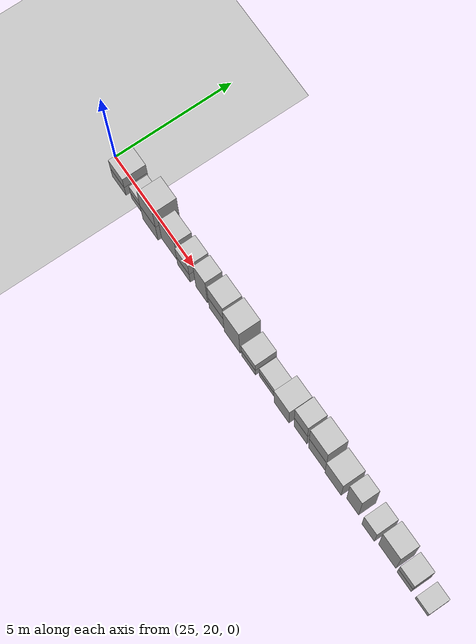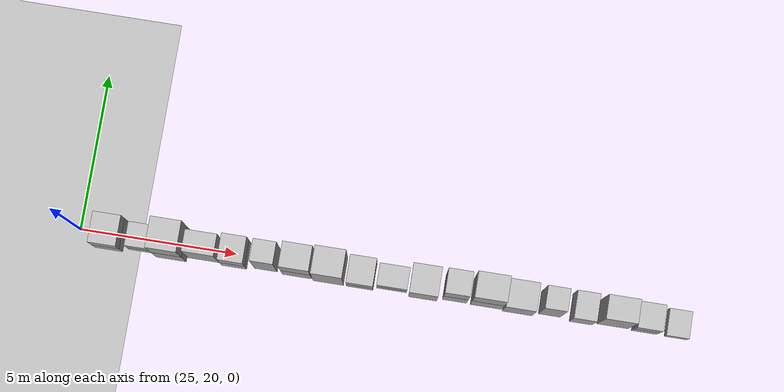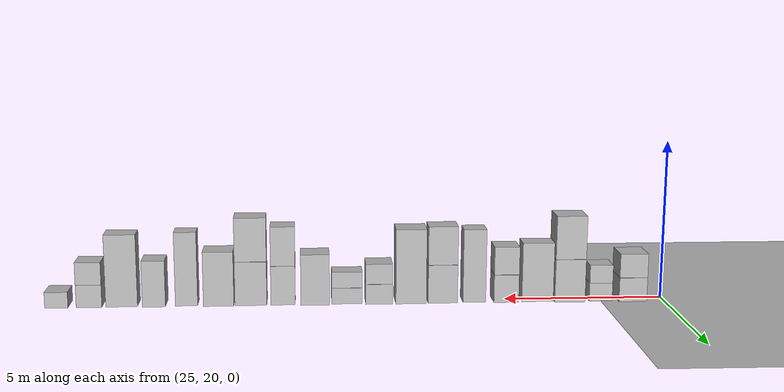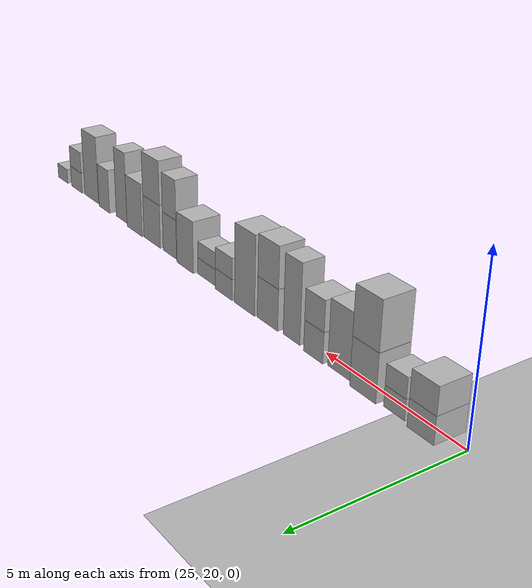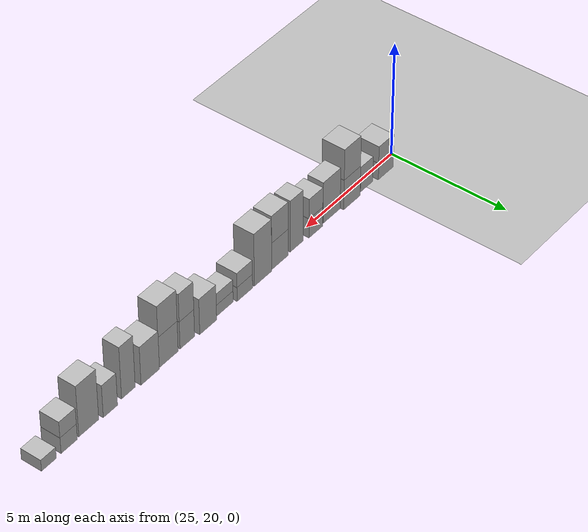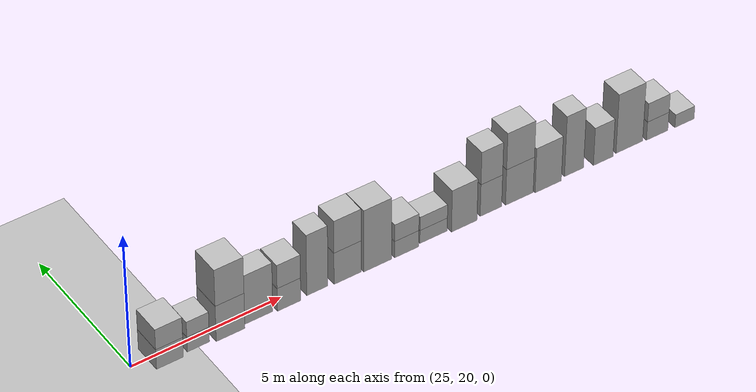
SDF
<sdf version="1.5">
 <world name="default">
  <model name="ground_plane">
   <static>true</static>
   <link name="link">
    <collision name="collision">
     <geometry><plane><normal>0 0 1</normal><size>250 250</size></plane></geometry>
     <surface><friction><ode><mu>1</mu><mu2>1</mu2></ode></friction></surface>
    </collision>
    <visual name="grass">
     <cast_shadows>false</cast_shadows>
     <geometry><mesh><uri>file://grass_plane/meshes/grass_plane.dae</uri></mesh></geometry>
    </visual>
   </link>
  </model>
  <model name="Cardboard_box_351">
   <link name="link_0">
    <pose>26 20 0 0 0 0</pose>
    <inertial>
     <mass>1</mass>
     <inertia>
      <ixx>0.166667</ixx>
      <ixy>0</ixy>
      <ixz>0</ixz>
      <iyy>0.166667</iyy>
      <iyz>0</iyz>
      <izz>0.166667</izz>
     </inertia>
    </inertial>
    <collision name="collision">
     <geometry>
      <mesh>
       <uri>model://Cardboard_box/meshes/cardboard_box.dae</uri>
       <scale>2.21627077504 2.44480705273 1.92564621155</scale>
      </mesh>
     </geometry>
    </collision>
    <visual name="visual">
     <geometry>
      <mesh>
       <uri>model://Cardboard_box/meshes/cardboard_box.dae</uri>
       <scale>2.21627077504 2.44480705273 1.92564621155</scale>
      </mesh>
     </geometry>
    </visual>
   </link>
   <static>1</static>
  </model>
  <model name="Cardboard_box_top_351">
   <link name="link_0">
    <pose>26 20 0.770258484618 0 0 0</pose>
    <inertial>
     <mass>1</mass>
     <inertia>
      <ixx>0.166667</ixx>
      <ixy>0</ixy>
      <ixz>0</ixz>
      <iyy>0.166667</iyy>
      <iyz>0</iyz>
      <izz>0.166667</izz>
     </inertia>
    </inertial>
    <collision name="collision">
     <geometry>
      <mesh>
       <uri>model://Cardboard_box/meshes/cardboard_box.dae</uri>
       <scale>2.21627077504 2.44480705273 1.92564621155</scale>
      </mesh>
     </geometry>
    </collision>
    <visual name="visual">
     <geometry>
      <mesh>
       <uri>model://Cardboard_box/meshes/cardboard_box.dae</uri>
       <scale>2.21627077504 2.44480705273 1.92564621155</scale>
      </mesh>
     </geometry>
    </visual>
   </link>
   <static>1</static>
  </model>
  <model name="Cardboard_box_352">
   <link name="link_0">
    <pose>27 20 0 0 0 0</pose>
    <inertial>
     <mass>1</mass>
     <inertia>
      <ixx>0.166667</ixx>
      <ixy>0</ixy>
      <ixz>0</ixz>
      <iyy>0.166667</iyy>
      <iyz>0</iyz>
      <izz>0.166667</izz>
     </inertia>
    </inertial>
    <collision name="collision">
     <geometry>
      <mesh>
       <uri>model://Cardboard_box/meshes/cardboard_box.dae</uri>
       <scale>1.83399176675 1.92023789862 1.45367494114</scale>
      </mesh>
     </geometry>
    </collision>
    <visual name="visual">
     <geometry>
      <mesh>
       <uri>model://Cardboard_box/meshes/cardboard_box.dae</uri>
       <scale>1.83399176675 1.92023789862 1.45367494114</scale>
      </mesh>
     </geometry>
    </visual>
   </link>
   <static>1</static>
  </model>
  <model name="Cardboard_box_top_352">
   <link name="link_0">
    <pose>27 20 0.581469976457 0 0 0</pose>
    <inertial>
     <mass>1</mass>
     <inertia>
      <ixx>0.166667</ixx>
      <ixy>0</ixy>
      <ixz>0</ixz>
      <iyy>0.166667</iyy>
      <iyz>0</iyz>
      <izz>0.166667</izz>
     </inertia>
    </inertial>
    <collision name="collision">
     <geometry>
      <mesh>
       <uri>model://Cardboard_box/meshes/cardboard_box.dae</uri>
       <scale>1.83399176675 1.92023789862 1.45367494114</scale>
      </mesh>
     </geometry>
    </collision>
    <visual name="visual">
     <geometry>
      <mesh>
       <uri>model://Cardboard_box/meshes/cardboard_box.dae</uri>
       <scale>1.83399176675 1.92023789862 1.45367494114</scale>
      </mesh>
     </geometry>
    </visual>
   </link>
   <static>1</static>
  </model>
  <model name="Cardboard_box_353">
   <link name="link_0">
    <pose>28 20 0 0 0 0</pose>
    <inertial>
     <mass>1</mass>
     <inertia>
      <ixx>0.166667</ixx>
      <ixy>0</ixy>
      <ixz>0</ixz>
      <iyy>0.166667</iyy>
      <iyz>0</iyz>
      <izz>0.166667</izz>
     </inertia>
    </inertial>
    <collision name="collision">
     <geometry>
      <mesh>
       <uri>model://Cardboard_box/meshes/cardboard_box.dae</uri>
       <scale>2.40103749172 2.43534651903 3.45936105191</scale>
      </mesh>
     </geometry>
    </collision>
    <visual name="visual">
     <geometry>
      <mesh>
       <uri>model://Cardboard_box/meshes/cardboard_box.dae</uri>
       <scale>2.40103749172 2.43534651903 3.45936105191</scale>
      </mesh>
     </geometry>
    </visual>
   </link>
   <static>1</static>
  </model>
  <model name="Cardboard_box_top_353">
   <link name="link_0">
    <pose>28 20 1.38374442076 0 0 0</pose>
    <inertial>
     <mass>1</mass>
     <inertia>
      <ixx>0.166667</ixx>
      <ixy>0</ixy>
      <ixz>0</ixz>
      <iyy>0.166667</iyy>
      <iyz>0</iyz>
      <izz>0.166667</izz>
     </inertia>
    </inertial>
    <collision name="collision">
     <geometry>
      <mesh>
       <uri>model://Cardboard_box/meshes/cardboard_box.dae</uri>
       <scale>2.40103749172 2.43534651903 3.45936105191</scale>
      </mesh>
     </geometry>
    </collision>
    <visual name="visual">
     <geometry>
      <mesh>
       <uri>model://Cardboard_box/meshes/cardboard_box.dae</uri>
       <scale>2.40103749172 2.43534651903 3.45936105191</scale>
      </mesh>
     </geometry>
    </visual>
   </link>
   <static>1</static>
  </model>
  <model name="Cardboard_box_354">
   <link name="link_0">
    <pose>29 20 0 0 0 0</pose>
    <inertial>
     <mass>1</mass>
     <inertia>
      <ixx>0.166667</ixx>
      <ixy>0</ixy>
      <ixz>0</ixz>
      <iyy>0.166667</iyy>
      <iyz>0</iyz>
      <izz>0.166667</izz>
     </inertia>
    </inertial>
    <collision name="collision">
     <geometry>
      <mesh>
       <uri>model://Cardboard_box/meshes/cardboard_box.dae</uri>
       <scale>2.49883755894 1.74340582279 4.7411884213</scale>
      </mesh>
     </geometry>
    </collision>
    <visual name="visual">
     <geometry>
      <mesh>
       <uri>model://Cardboard_box/meshes/cardboard_box.dae</uri>
       <scale>2.49883755894 1.74340582279 4.7411884213</scale>
      </mesh>
     </geometry>
    </visual>
   </link>
   <static>1</static>
  </model>
  <model name="Cardboard_box_355">
   <link name="link_0">
    <pose>30 20 0 0 0 0</pose>
    <inertial>
     <mass>1</mass>
     <inertia>
      <ixx>0.166667</ixx>
      <ixy>0</ixy>
      <ixz>0</ixz>
      <iyy>0.166667</iyy>
      <iyz>0</iyz>
      <izz>0.166667</izz>
     </inertia>
    </inertial>
    <collision name="collision">
     <geometry>
      <mesh>
       <uri>model://Cardboard_box/meshes/cardboard_box.dae</uri>
       <scale>1.97534647907 2.10044778413 2.23458932496</scale>
      </mesh>
     </geometry>
    </collision>
    <visual name="visual">
     <geometry>
      <mesh>
       <uri>model://Cardboard_box/meshes/cardboard_box.dae</uri>
       <scale>1.97534647907 2.10044778413 2.23458932496</scale>
      </mesh>
     </geometry>
    </visual>
   </link>
   <static>1</static>
  </model>
  <model name="Cardboard_box_top_355">
   <link name="link_0">
    <pose>30 20 0.893835729983 0 0 0</pose>
    <inertial>
     <mass>1</mass>
     <inertia>
      <ixx>0.166667</ixx>
      <ixy>0</ixy>
      <ixz>0</ixz>
      <iyy>0.166667</iyy>
      <iyz>0</iyz>
      <izz>0.166667</izz>
     </inertia>
    </inertial>
    <collision name="collision">
     <geometry>
      <mesh>
       <uri>model://Cardboard_box/meshes/cardboard_box.dae</uri>
       <scale>1.97534647907 2.10044778413 2.23458932496</scale>
      </mesh>
     </geometry>
    </collision>
    <visual name="visual">
     <geometry>
      <mesh>
       <uri>model://Cardboard_box/meshes/cardboard_box.dae</uri>
       <scale>1.97534647907 2.10044778413 2.23458932496</scale>
      </mesh>
     </geometry>
    </visual>
   </link>
   <static>1</static>
  </model>
  <model name="Cardboard_box_356">
   <link name="link_0">
    <pose>31 20 0 0 0 0</pose>
    <inertial>
     <mass>1</mass>
     <inertia>
      <ixx>0.166667</ixx>
      <ixy>0</ixy>
      <ixz>0</ixz>
      <iyy>0.166667</iyy>
      <iyz>0</iyz>
      <izz>0.166667</izz>
     </inertia>
    </inertial>
    <collision name="collision">
     <geometry>
      <mesh>
       <uri>model://Cardboard_box/meshes/cardboard_box.dae</uri>
       <scale>1.8056659084 1.74681240035 5.88814653012</scale>
      </mesh>
     </geometry>
    </collision>
    <visual name="visual">
     <geometry>
      <mesh>
       <uri>model://Cardboard_box/meshes/cardboard_box.dae</uri>
       <scale>1.8056659084 1.74681240035 5.88814653012</scale>
      </mesh>
     </geometry>
    </visual>
   </link>
   <static>1</static>
  </model>
  <model name="Cardboard_box_357">
   <link name="link_0">
    <pose>32 20 0 0 0 0</pose>
    <inertial>
     <mass>1</mass>
     <inertia>
      <ixx>0.166667</ixx>
      <ixy>0</ixy>
      <ixz>0</ixz>
      <iyy>0.166667</iyy>
      <iyz>0</iyz>
      <izz>0.166667</izz>
     </inertia>
    </inertial>
    <collision name="collision">
     <geometry>
      <mesh>
       <uri>model://Cardboard_box/meshes/cardboard_box.dae</uri>
       <scale>2.32715835396 1.98637832905 3.07040538458</scale>
      </mesh>
     </geometry>
    </collision>
    <visual name="visual">
     <geometry>
      <mesh>
       <uri>model://Cardboard_box/meshes/cardboard_box.dae</uri>
       <scale>2.32715835396 1.98637832905 3.07040538458</scale>
      </mesh>
     </geometry>
    </visual>
   </link>
   <static>1</static>
  </model>
  <model name="Cardboard_box_top_357">
   <link name="link_0">
    <pose>32 20 1.22816215383 0 0 0</pose>
    <inertial>
     <mass>1</mass>
     <inertia>
      <ixx>0.166667</ixx>
      <ixy>0</ixy>
      <ixz>0</ixz>
      <iyy>0.166667</iyy>
      <iyz>0</iyz>
      <izz>0.166667</izz>
     </inertia>
    </inertial>
    <collision name="collision">
     <geometry>
      <mesh>
       <uri>model://Cardboard_box/meshes/cardboard_box.dae</uri>
       <scale>2.32715835396 1.98637832905 3.07040538458</scale>
      </mesh>
     </geometry>
    </collision>
    <visual name="visual">
     <geometry>
      <mesh>
       <uri>model://Cardboard_box/meshes/cardboard_box.dae</uri>
       <scale>2.32715835396 1.98637832905 3.07040538458</scale>
      </mesh>
     </geometry>
    </visual>
   </link>
   <static>1</static>
  </model>
  <model name="Cardboard_box_358">
   <link name="link_0">
    <pose>33 20 0 0 0 0</pose>
    <inertial>
     <mass>1</mass>
     <inertia>
      <ixx>0.166667</ixx>
      <ixy>0</ixy>
      <ixz>0</ixz>
      <iyy>0.166667</iyy>
      <iyz>0</iyz>
      <izz>0.166667</izz>
     </inertia>
    </inertial>
    <collision name="collision">
     <geometry>
      <mesh>
       <uri>model://Cardboard_box/meshes/cardboard_box.dae</uri>
       <scale>2.4139722664 2.21125031068 5.99443428483</scale>
      </mesh>
     </geometry>
    </collision>
    <visual name="visual">
     <geometry>
      <mesh>
       <uri>model://Cardboard_box/meshes/cardboard_box.dae</uri>
       <scale>2.4139722664 2.21125031068 5.99443428483</scale>
      </mesh>
     </geometry>
    </visual>
   </link>
   <static>1</static>
  </model>
  <model name="Cardboard_box_359">
   <link name="link_0">
    <pose>34 20 0 0 0 0</pose>
    <inertial>
     <mass>1</mass>
     <inertia>
      <ixx>0.166667</ixx>
      <ixy>0</ixy>
      <ixz>0</ixz>
      <iyy>0.166667</iyy>
      <iyz>0</iyz>
      <izz>0.166667</izz>
     </inertia>
    </inertial>
    <collision name="collision">
     <geometry>
      <mesh>
       <uri>model://Cardboard_box/meshes/cardboard_box.dae</uri>
       <scale>2.10958934457 2.23888618355 1.61336764243</scale>
      </mesh>
     </geometry>
    </collision>
    <visual name="visual">
     <geometry>
      <mesh>
       <uri>model://Cardboard_box/meshes/cardboard_box.dae</uri>
       <scale>2.10958934457 2.23888618355 1.61336764243</scale>
      </mesh>
     </geometry>
    </visual>
   </link>
   <static>1</static>
  </model>
  <model name="Cardboard_box_top_359">
   <link name="link_0">
    <pose>34 20 0.645347056971 0 0 0</pose>
    <inertial>
     <mass>1</mass>
     <inertia>
      <ixx>0.166667</ixx>
      <ixy>0</ixy>
      <ixz>0</ixz>
      <iyy>0.166667</iyy>
      <iyz>0</iyz>
      <izz>0.166667</izz>
     </inertia>
    </inertial>
    <collision name="collision">
     <geometry>
      <mesh>
       <uri>model://Cardboard_box/meshes/cardboard_box.dae</uri>
       <scale>2.10958934457 2.23888618355 1.61336764243</scale>
      </mesh>
     </geometry>
    </collision>
    <visual name="visual">
     <geometry>
      <mesh>
       <uri>model://Cardboard_box/meshes/cardboard_box.dae</uri>
       <scale>2.10958934457 2.23888618355 1.61336764243</scale>
      </mesh>
     </geometry>
    </visual>
   </link>
   <static>1</static>
  </model>
  <model name="Cardboard_box_360">
   <link name="link_0">
    <pose>35 20 0 0 0 0</pose>
    <inertial>
     <mass>1</mass>
     <inertia>
      <ixx>0.166667</ixx>
      <ixy>0</ixy>
      <ixz>0</ixz>
      <iyy>0.166667</iyy>
      <iyz>0</iyz>
      <izz>0.166667</izz>
     </inertia>
    </inertial>
    <collision name="collision">
     <geometry>
      <mesh>
       <uri>model://Cardboard_box/meshes/cardboard_box.dae</uri>
       <scale>2.40501440313 1.77537287401 1.28652294145</scale>
      </mesh>
     </geometry>
    </collision>
    <visual name="visual">
     <geometry>
      <mesh>
       <uri>model://Cardboard_box/meshes/cardboard_box.dae</uri>
       <scale>2.40501440313 1.77537287401 1.28652294145</scale>
      </mesh>
     </geometry>
    </visual>
   </link>
   <static>1</static>
  </model>
  <model name="Cardboard_box_top_360">
   <link name="link_0">
    <pose>35 20 0.514609176581 0 0 0</pose>
    <inertial>
     <mass>1</mass>
     <inertia>
      <ixx>0.166667</ixx>
      <ixy>0</ixy>
      <ixz>0</ixz>
      <iyy>0.166667</iyy>
      <iyz>0</iyz>
      <izz>0.166667</izz>
     </inertia>
    </inertial>
    <collision name="collision">
     <geometry>
      <mesh>
       <uri>model://Cardboard_box/meshes/cardboard_box.dae</uri>
       <scale>2.40501440313 1.77537287401 1.28652294145</scale>
      </mesh>
     </geometry>
    </collision>
    <visual name="visual">
     <geometry>
      <mesh>
       <uri>model://Cardboard_box/meshes/cardboard_box.dae</uri>
       <scale>2.40501440313 1.77537287401 1.28652294145</scale>
      </mesh>
     </geometry>
    </visual>
   </link>
   <static>1</static>
  </model>
  <model name="Cardboard_box_361">
   <link name="link_0">
    <pose>36 20 0 0 0 0</pose>
    <inertial>
     <mass>1</mass>
     <inertia>
      <ixx>0.166667</ixx>
      <ixy>0</ixy>
      <ixz>0</ixz>
      <iyy>0.166667</iyy>
      <iyz>0</iyz>
      <izz>0.166667</izz>
     </inertia>
    </inertial>
    <collision name="collision">
     <geometry>
      <mesh>
       <uri>model://Cardboard_box/meshes/cardboard_box.dae</uri>
       <scale>2.25590801479 2.33818136369 4.06674671749</scale>
      </mesh>
     </geometry>
    </collision>
    <visual name="visual">
     <geometry>
      <mesh>
       <uri>model://Cardboard_box/meshes/cardboard_box.dae</uri>
       <scale>2.25590801479 2.33818136369 4.06674671749</scale>
      </mesh>
     </geometry>
    </visual>
   </link>
   <static>1</static>
  </model>
  <model name="Cardboard_box_362">
   <link name="link_0">
    <pose>37 20 0 0 0 0</pose>
    <inertial>
     <mass>1</mass>
     <inertia>
      <ixx>0.166667</ixx>
      <ixy>0</ixy>
      <ixz>0</ixz>
      <iyy>0.166667</iyy>
      <iyz>0</iyz>
      <izz>0.166667</izz>
     </inertia>
    </inertial>
    <collision name="collision">
     <geometry>
      <mesh>
       <uri>model://Cardboard_box/meshes/cardboard_box.dae</uri>
       <scale>1.91756529996 1.92159034631 3.12432337683</scale>
      </mesh>
     </geometry>
    </collision>
    <visual name="visual">
     <geometry>
      <mesh>
       <uri>model://Cardboard_box/meshes/cardboard_box.dae</uri>
       <scale>1.91756529996 1.92159034631 3.12432337683</scale>
      </mesh>
     </geometry>
    </visual>
   </link>
   <static>1</static>
  </model>
  <model name="Cardboard_box_top_362">
   <link name="link_0">
    <pose>37 20 1.24972935073 0 0 0</pose>
    <inertial>
     <mass>1</mass>
     <inertia>
      <ixx>0.166667</ixx>
      <ixy>0</ixy>
      <ixz>0</ixz>
      <iyy>0.166667</iyy>
      <iyz>0</iyz>
      <izz>0.166667</izz>
     </inertia>
    </inertial>
    <collision name="collision">
     <geometry>
      <mesh>
       <uri>model://Cardboard_box/meshes/cardboard_box.dae</uri>
       <scale>1.91756529996 1.92159034631 3.12432337683</scale>
      </mesh>
     </geometry>
    </collision>
    <visual name="visual">
     <geometry>
      <mesh>
       <uri>model://Cardboard_box/meshes/cardboard_box.dae</uri>
       <scale>1.91756529996 1.92159034631 3.12432337683</scale>
      </mesh>
     </geometry>
    </visual>
   </link>
   <static>1</static>
  </model>
  <model name="Cardboard_box_363">
   <link name="link_0">
    <pose>38 20 0 0 0 0</pose>
    <inertial>
     <mass>1</mass>
     <inertia>
      <ixx>0.166667</ixx>
      <ixy>0</ixy>
      <ixz>0</ixz>
      <iyy>0.166667</iyy>
      <iyz>0</iyz>
      <izz>0.166667</izz>
     </inertia>
    </inertial>
    <collision name="collision">
     <geometry>
      <mesh>
       <uri>model://Cardboard_box/meshes/cardboard_box.dae</uri>
       <scale>2.49140897798 2.01761228089 3.49514549703</scale>
      </mesh>
     </geometry>
    </collision>
    <visual name="visual">
     <geometry>
      <mesh>
       <uri>model://Cardboard_box/meshes/cardboard_box.dae</uri>
       <scale>2.49140897798 2.01761228089 3.49514549703</scale>
      </mesh>
     </geometry>
    </visual>
   </link>
   <static>1</static>
  </model>
  <model name="Cardboard_box_top_363">
   <link name="link_0">
    <pose>38 20 1.39805819881 0 0 0</pose>
    <inertial>
     <mass>1</mass>
     <inertia>
      <ixx>0.166667</ixx>
      <ixy>0</ixy>
      <ixz>0</ixz>
      <iyy>0.166667</iyy>
      <iyz>0</iyz>
      <izz>0.166667</izz>
     </inertia>
    </inertial>
    <collision name="collision">
     <geometry>
      <mesh>
       <uri>model://Cardboard_box/meshes/cardboard_box.dae</uri>
       <scale>2.49140897798 2.01761228089 3.49514549703</scale>
      </mesh>
     </geometry>
    </collision>
    <visual name="visual">
     <geometry>
      <mesh>
       <uri>model://Cardboard_box/meshes/cardboard_box.dae</uri>
       <scale>2.49140897798 2.01761228089 3.49514549703</scale>
      </mesh>
     </geometry>
    </visual>
   </link>
   <static>1</static>
  </model>
  <model name="Cardboard_box_364">
   <link name="link_0">
    <pose>39 20 0 0 0 0</pose>
    <inertial>
     <mass>1</mass>
     <inertia>
      <ixx>0.166667</ixx>
      <ixy>0</ixy>
      <ixz>0</ixz>
      <iyy>0.166667</iyy>
      <iyz>0</iyz>
      <izz>0.166667</izz>
     </inertia>
    </inertial>
    <collision name="collision">
     <geometry>
      <mesh>
       <uri>model://Cardboard_box/meshes/cardboard_box.dae</uri>
       <scale>2.37882835994 2.24621169598 4.36002187583</scale>
      </mesh>
     </geometry>
    </collision>
    <visual name="visual">
     <geometry>
      <mesh>
       <uri>model://Cardboard_box/meshes/cardboard_box.dae</uri>
       <scale>2.37882835994 2.24621169598 4.36002187583</scale>
      </mesh>
     </geometry>
    </visual>
   </link>
   <static>1</static>
  </model>
  <model name="Cardboard_box_365">
   <link name="link_0">
    <pose>40 20 0 0 0 0</pose>
    <inertial>
     <mass>1</mass>
     <inertia>
      <ixx>0.166667</ixx>
      <ixy>0</ixy>
      <ixz>0</ixz>
      <iyy>0.166667</iyy>
      <iyz>0</iyz>
      <izz>0.166667</izz>
     </inertia>
    </inertial>
    <collision name="collision">
     <geometry>
      <mesh>
       <uri>model://Cardboard_box/meshes/cardboard_box.dae</uri>
       <scale>1.73817810888 1.7723167824 5.89542401795</scale>
      </mesh>
     </geometry>
    </collision>
    <visual name="visual">
     <geometry>
      <mesh>
       <uri>model://Cardboard_box/meshes/cardboard_box.dae</uri>
       <scale>1.73817810888 1.7723167824 5.89542401795</scale>
      </mesh>
     </geometry>
    </visual>
   </link>
   <static>1</static>
  </model>
  <model name="Cardboard_box_366">
   <link name="link_0">
    <pose>41 20 0 0 0 0</pose>
    <inertial>
     <mass>1</mass>
     <inertia>
      <ixx>0.166667</ixx>
      <ixy>0</ixy>
      <ixz>0</ixz>
      <iyy>0.166667</iyy>
      <iyz>0</iyz>
      <izz>0.166667</izz>
     </inertia>
    </inertial>
    <collision name="collision">
     <geometry>
      <mesh>
       <uri>model://Cardboard_box/meshes/cardboard_box.dae</uri>
       <scale>1.79894110136 2.19276711187 3.68204704131</scale>
      </mesh>
     </geometry>
    </collision>
    <visual name="visual">
     <geometry>
      <mesh>
       <uri>model://Cardboard_box/meshes/cardboard_box.dae</uri>
       <scale>1.79894110136 2.19276711187 3.68204704131</scale>
      </mesh>
     </geometry>
    </visual>
   </link>
   <static>1</static>
  </model>
  <model name="Cardboard_box_367">
   <link name="link_0">
    <pose>42 20 0 0 0 0</pose>
    <inertial>
     <mass>1</mass>
     <inertia>
      <ixx>0.166667</ixx>
      <ixy>0</ixy>
      <ixz>0</ixz>
      <iyy>0.166667</iyy>
      <iyz>0</iyz>
      <izz>0.166667</izz>
     </inertia>
    </inertial>
    <collision name="collision">
     <geometry>
      <mesh>
       <uri>model://Cardboard_box/meshes/cardboard_box.dae</uri>
       <scale>2.46383970592 1.88463473428 5.7614324677</scale>
      </mesh>
     </geometry>
    </collision>
    <visual name="visual">
     <geometry>
      <mesh>
       <uri>model://Cardboard_box/meshes/cardboard_box.dae</uri>
       <scale>2.46383970592 1.88463473428 5.7614324677</scale>
      </mesh>
     </geometry>
    </visual>
   </link>
   <static>1</static>
  </model>
  <model name="Cardboard_box_368">
   <link name="link_0">
    <pose>43 20 0 0 0 0</pose>
    <inertial>
     <mass>1</mass>
     <inertia>
      <ixx>0.166667</ixx>
      <ixy>0</ixy>
      <ixz>0</ixz>
      <iyy>0.166667</iyy>
      <iyz>0</iyz>
      <izz>0.166667</izz>
     </inertia>
    </inertial>
    <collision name="collision">
     <geometry>
      <mesh>
       <uri>model://Cardboard_box/meshes/cardboard_box.dae</uri>
       <scale>1.9948924676 2.06687004795 1.80152831284</scale>
      </mesh>
     </geometry>
    </collision>
    <visual name="visual">
     <geometry>
      <mesh>
       <uri>model://Cardboard_box/meshes/cardboard_box.dae</uri>
       <scale>1.9948924676 2.06687004795 1.80152831284</scale>
      </mesh>
     </geometry>
    </visual>
   </link>
   <static>1</static>
  </model>
  <model name="Cardboard_box_top_368">
   <link name="link_0">
    <pose>43 20 0.720611325135 0 0 0</pose>
    <inertial>
     <mass>1</mass>
     <inertia>
      <ixx>0.166667</ixx>
      <ixy>0</ixy>
      <ixz>0</ixz>
      <iyy>0.166667</iyy>
      <iyz>0</iyz>
      <izz>0.166667</izz>
     </inertia>
    </inertial>
    <collision name="collision">
     <geometry>
      <mesh>
       <uri>model://Cardboard_box/meshes/cardboard_box.dae</uri>
       <scale>1.9948924676 2.06687004795 1.80152831284</scale>
      </mesh>
     </geometry>
    </collision>
    <visual name="visual">
     <geometry>
      <mesh>
       <uri>model://Cardboard_box/meshes/cardboard_box.dae</uri>
       <scale>1.9948924676 2.06687004795 1.80152831284</scale>
      </mesh>
     </geometry>
    </visual>
   </link>
   <static>1</static>
  </model>
  <model name="Cardboard_box_369">
   <link name="link_0">
    <pose>44 20 0 0 0 0</pose>
    <inertial>
     <mass>1</mass>
     <inertia>
      <ixx>0.166667</ixx>
      <ixy>0</ixy>
      <ixz>0</ixz>
      <iyy>0.166667</iyy>
      <iyz>0</iyz>
      <izz>0.166667</izz>
     </inertia>
    </inertial>
    <collision name="collision">
     <geometry>
      <mesh>
       <uri>model://Cardboard_box/meshes/cardboard_box.dae</uri>
       <scale>1.7969958977 2.15406189574 1.26445536827</scale>
      </mesh>
     </geometry>
    </collision>
    <visual name="visual">
     <geometry>
      <mesh>
       <uri>model://Cardboard_box/meshes/cardboard_box.dae</uri>
       <scale>1.7969958977 2.15406189574 1.26445536827</scale>
      </mesh>
     </geometry>
    </visual>
   </link>
   <static>1</static>
  </model>
 </world>
</sdf>
